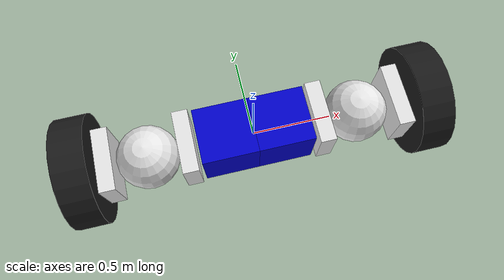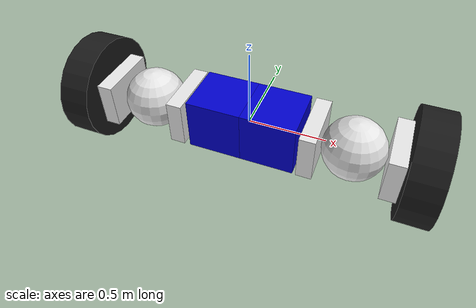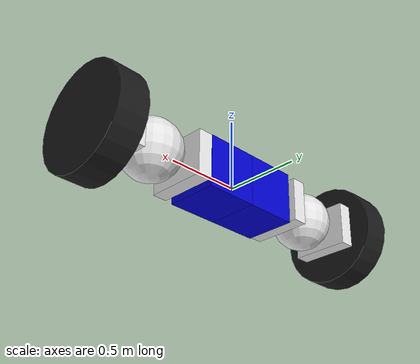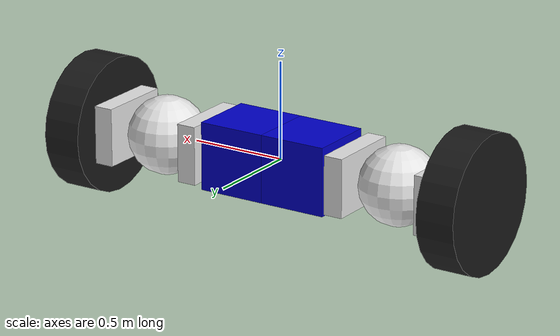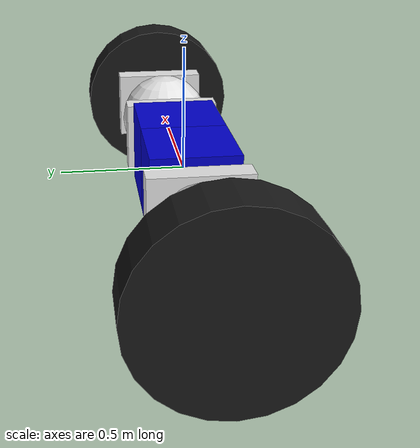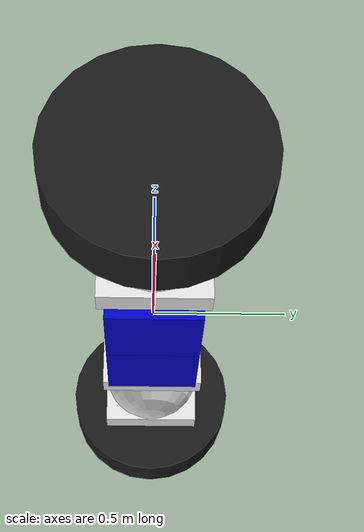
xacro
<?xml version="1.0"?>
<robot name="mrs" xmlns:xacro="http://www.ros.org/wiki/xacro">

  <!-- Constants for robot -->
  <xacro:include filename="$(find mrs_description)/urdf/common_mrs.xacro" />
  <!-- Import all Gazebo-customization elements, including Gazebo colors -->
  <xacro:include filename="$(find mrs_description)/urdf/simplified_mrs.xacro" />
  <!-- materials for visualization -->

  <xacro:macro name="initialising_frame" params="name scale prefix">
  <link name="${name}">
    <visual>
      <origin xyz="0 0 0" rpy="0 0 0"/>
      <geometry>
        <box size="0.001 0.001 0.001"/>
      </geometry>
      <material name="Red"/>
    </visual>
    <collision>
      <geometry>
        <box size="0.001 0.001 0.001"/>
      </geometry>
    </collision>
  </link>

  <joint name="${name}_joint" type="fixed">
    <origin xyz="0 0 0" rpy="0 0 0"/>
    <child link="${name}_dummy"/>
    <parent link="${name}"/>
  </joint>
  <link name="${name}_dummy"/>

  <xacro:pcm_module parent="${name}" prefix="${prefix}" instance="1" scale="${scale}" len="0.35" z="0" x="0.175" rotate="0" />
  <xacro:pcm_module parent="${name}" prefix="${prefix}" instance="2" scale="${scale}" len="0.35" z="0" x="-0.175" rotate="2"/>

  <xacro:joint_module_3DOF parent="${prefix}_pcm_link_1" prefix="1" instance="1" scale="${scale}" rotate="0"/>
  <xacro:joint_module_3DOF parent="${prefix}_pcm_link_2" prefix="2" instance="1" scale="${scale}" rotate="0"/>
  <xacro:sm_wheel parent="1_jm_link_2" prefix="${prefix}" instance="1" dia="${JMwidth+0.3}" length="0.2" rotate="1" x="1" y="0"/>
  <xacro:sm_wheel parent="2_jm_link_2" prefix="${prefix}" instance="2" dia="${JMwidth+0.3}" length="0.2" rotate="1" x="1" y="0"/>

  <xacro:diff_drive ljoint="2_jm_joint_2" rjoint="1_jm_joint_2" parent="${name}_dummy"  />

  </xacro:macro>

<!-- For 2 JM 2 PC 2 WM mobile robot -->

  <xacro:initialising_frame name="base_footprint" scale="1" prefix="mrs"/>

  <gazebo>

    <plugin name="gazebo_ros_control" filename="libgazebo_ros_control.so">
      <robotNamespace>/mrs</robotNamespace>
    </plugin>

  </gazebo>

</robot>

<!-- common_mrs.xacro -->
<robot name="mrs" xmlns:xacro="http://www.ros.org/wiki/xacro">

	<!-- Auxiliar Values -->
	<property name="pi" value="3.1415926535897931" />
	<property name="max_effort" value="20" />
	<property name="max_velocity" value="10" />

	<!-- Links Mass -->
	<property name="j1_mass" value="0.137" />
	<property name="j2_mass" value="0.01" />
	<property name="j3_mass" value="0.027" />
	<property name="w1_mass" value="0.089" />
	<property name="pc_mass" value="0.249" />

	<!-- Links COG -->
	<property name="j1_cog" value="-0.024 -0.021 0" />
	<property name="j2_cog" value="1.068e-4 0 4.22e-4" />
	<property name="j3_cog" value="-5.121e-4 0.014 -0.012" />
	<property name="w1_cog" value="-0.003 0 0" />
	<property name="pc_cog" value="-0.034 0 0" />

	<!-- Links Inertia -->
	<macro name="j1_inertia">
		<inertia ixx="1.043e-4" ixy="4.237e-5" ixz="8.843e-7"
		iyy="1.259e-5" iyz="-2.329e-8" izz="1.759e-4" />
	</macro>
	<macro name="j2_inertia">
		<inertia 	ixx="1.34e-6" 	ixy="2.119e-11"		ixz="7.365e-11"
							iyy="1.326e-6"	iyz="2.329e-12"
							izz="2.006e-6" />
	</macro>
	<macro name="j3_inertia">
		<inertia 	ixx="9.335e-6" ixy="1.198e-8" ixz="5.264e-9"
							iyy="5.505e-6" iyz="-2.699e-6"
							izz="6.39e-6" />
	</macro>
	<macro name="pc_inertia">
		<inertia 	ixx="4.35e-4" ixy="-5.575e-21" ixz="4.256e-21"
							iyy="4.82e-4" iyz="3.176e-21"
							izz="1.809e-4" />
	</macro>
	<macro name="w1_inertia">
		<inertia 	ixx="1.036e-4" ixy="0" ixz="0"
							iyy="5.359e-5" iyz="0"
							izz="5.359e-5" />
	</macro>
		<!-- Links orientation and origin -->
	<macro name="j1_ori">
      <origin xyz="0 0 0" rpy="${-pi/2} 0 0"/>
	</macro>
	<macro name="j2_ori">
		<origin xyz="0.044 0 0" rpy="0 0 0" />
	</macro>
	<macro name="j3_ori">
      <origin xyz="-0.5 0 0" rpy="0 0 ${-pi/2} "/>
	</macro>
	<macro name="pc_ori">
      <origin xyz="0.5 0 0" rpy="0 0 0"/>
	</macro>
	<macro name="w1_ori">
      <origin xyz="0 0 0" rpy="0 0 0 "/>
	</macro>

	<!-- MESH FILES -->
	<property name="j1_mesh" value="package://mrs_description/meshes/J1.dae" />
		<!--property name="j1_mesh" value="package://mrs_description/meshes/BASE.dae" /-->
	<property name="j2_mesh" value="package://mrs_description/meshes/J2.dae" />
	<property name="j3_mesh" value="package://mrs_description/meshes/J3.dae" />
	<property name="pc_mesh" value="package://mrs_description/meshes/Pc.dae" />
	<property name="w1_mesh" value="package://mrs_description/meshes/WR1.dae" />

	<!-- Link's Macro -->
	<macro name="create_link" params="name color mesh mass cog *inertia instance prefix">
		<link name="${instance}_${prefix}_${name}">
			<visual>
				<!--xacro:insert_block name="ori" /-->
				<geometry>
					<mesh filename="${mesh}" />
				</geometry>
				<material name="${color}" />
			</visual>
			<collision>
				<!--xacro:insert_block name="ori" /-->
				<geometry>
					<mesh filename="${mesh}" />
				</geometry>
			</collision>
			<inertial>
				<origin xyz="${cog}" rpy="0 0 0" />
				<mass value="${mass}" />
				<xacro:insert_block name="inertia" />
			</inertial>
		</link>
	</macro>

	<macro name="create_link_no_collision" params="name color mesh mass cog *inertia instance prefix">
		<link name="${instance}_${prefix}_${name}">
			<visual>
				<!--xacro:insert_block name="ori" /-->
				<geometry>
					<mesh filename="${mesh}" />
				</geometry>
				<material name="${color}" />
			</visual>
			<inertial>
				<origin xyz="${cog}" rpy="0 0 0" />
				<mass value="${mass}" />
				<xacro:insert_block name="inertia" />
			</inertial>
		</link>
	</macro>
	<!-- Transmission's Macro -->
	<macro name="simple_transmission" params="joint">
		<transmission name="${joint}tran">
			<type>transmission_interface/SimpleTransmission</type>
			<joint name="${joint}" />
			<actuator name="${joint}_motor">
				<hardwareInterface>EffortJointInterface</hardwareInterface>
				<mechanicalReduction>1</mechanicalReduction>
			</actuator>
		</transmission>
	</macro>

	<!-- Joints Dynamics -->
	<property name="j1_damping" value="0" />
	<property name="j2_damping" value="0" />
	<property name="j3_damping" value="0" />
	<property name="w1_damping" value="0" />

</robot>

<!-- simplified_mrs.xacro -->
<robot name="mrs" xmlns:xacro="http://www.ros.org/wiki/xacro">

  <!-- Import Rviz colors -->
  <xacro:include filename="$(find mrs_description)/urdf/materials.urdf.xacro" />

  <xacro:property name="JMlen" value=".1" />
  <xacro:property name="JMwidth" value=".4" />
  <xacro:property name="JMheight" value=".3" />

  <xacro:macro name="joint_module_diff_drive" params="parent prefix instance scale rotate">

<!-- Mobile robot using 1 JM - joint 2 should be made fixed -->
    <xacro:jm_sphere_link parent="${parent}" prefix="${prefix}" instance="0" scale="${scale}" type="fixed"/>
    <xacro:jm_rec_link parent="${prefix}_jm_link2_0" prefix="${prefix}" instance="1" scale="${scale}" rotate="0" reflect="-1" translateX="0" translateY="0"/>
    <xacro:jm_rec_link parent="${prefix}_jm_link2_0" prefix="${prefix}" instance="2" scale="${scale}" rotate="0" reflect="1" translateX="0" translateY="0"/>

    <xacro:simple_transmission joint="${prefix}_jm_joint_1" />
    <xacro:simple_transmission joint="${prefix}_jm_joint_2" />
    <xacro:diff_drive ljoint="${prefix}_jm_joint_1" rjoint="${prefix}_jm_joint_2" parent="${parent}"  />

  </xacro:macro>

    <xacro:macro name="joint_module_3DOF_vertical" params="parent prefix instance scale rotate">
<!-- Mobile robot with 2 or More JM  -->
    <xacro:jm_rec_link parent="${parent}" prefix="${prefix}" instance="1" scale="${scale}" rotate="${rotate}" reflect="0" translateX="0" translateY="0.1"/>
    <xacro:jm_sphere_link parent="${prefix}_jm_link_${instance}" prefix="${prefix}" instance="${instance}" scale="${scale}" type="revolute"/>
    <xacro:jm_rec_link parent="${prefix}_jm_link2_${instance}" prefix="${prefix}" instance="2" scale="${scale}" rotate="0" reflect="1" translateX="0" translateY="0"/>

    <xacro:simple_transmission joint="${prefix}_jm_joint_1" />
    <xacro:simple_transmission joint="${prefix}_jm_joint_2" />
    <xacro:simple_transmission joint="${prefix}_jm_joint2_1" />
<!--
Manipulator - rotate =1
-->

  </xacro:macro>
  <xacro:macro name="joint_module_3DOF" params="parent prefix instance scale rotate">
<!-- Mobile robot with 2 or More JM  -->
    <xacro:jm_rec_link parent="${parent}" prefix="${prefix}" instance="1" scale="${scale}" rotate="${rotate}" reflect="1" translateX="0" translateY="0"/>
    <xacro:jm_sphere_link parent="${prefix}_jm_link_${instance}" prefix="${prefix}" instance="${instance}" scale="${scale}" type="revolute"/>
    <xacro:jm_rec_link parent="${prefix}_jm_link2_${instance}" prefix="${prefix}" instance="2" scale="${scale}" rotate="0" reflect="1" translateX="0" translateY="0"/>

    <xacro:simple_transmission joint="${prefix}_jm_joint_1" />
    <xacro:simple_transmission joint="${prefix}_jm_joint_2" />
    <xacro:simple_transmission joint="${prefix}_jm_joint2_1" />
<!--
Manipulator - rotate =1
-->

  </xacro:macro>

  <xacro:macro name="jm_rec_link" params="parent prefix instance scale rotate reflect translateX translateY">
    <link name="${prefix}_jm_link_${instance}">
      <visual>
        <geometry>
          <box size="${JMlen*scale} ${JMwidth*scale} ${JMheight*scale}" />
        </geometry>
        <material name="Grey2">
        </material>
      </visual>
      <collision>
        <geometry>
          <box size="${JMlen*scale} ${JMwidth*scale} ${JMheight*scale}" />
        </geometry>
      </collision>
      <xacro:default_inertial mass="1" I_tensor="1"/>
    </link>
    <joint name="${prefix}_jm_joint_${instance}" type="continuous">
      <parent link="${parent}" />
      <child link="${prefix}_jm_link_${instance}" />
      <axis xyz="1 0 0"/>
      <origin xyz="${(reflect)*(JMlen+JMwidth)/2} ${translateX} ${translateY}" rpy="0 ${-rotate*pi/2} 0" />
    </joint>
      <xacro:gazebo_visual link="${prefix}_jm_link_${instance}" visual="Grey" />
  </xacro:macro>

    <xacro:macro name="jm_sphere_link" params="parent prefix instance scale type">
      <link name="${prefix}_jm_link2_${instance}">
        <visual>
          <geometry>
            <sphere radius="${JMwidth/2*scale}"/>
          </geometry>
          <material name="Grey2">
          </material>
        </visual>
        <collision>
          <geometry>
            <sphere radius="${JMwidth/2*scale}"/>
          </geometry>
        </collision>
        <xacro:default_inertial mass="1" I_tensor="1"/>
      </link>
      <joint name="${prefix}_jm_joint2_${instance}" type="${type}">
        <parent link="${parent}" />
        <child link="${prefix}_jm_link2_${instance}" />
        <origin xyz="${instance*(JMlen+JMwidth)/2} 0 0" rpy="0 0 0" />
        <axis xyz="0 0 1"/>
        <limit effort="100" velocity="100" lower="${-pi/2}"
        upper="${pi/2}" />
      </joint>
      <xacro:gazebo_visual link="${prefix}_jm_link2_${instance}" visual="Grey" />
    </xacro:macro>

    <xacro:macro name="diff_drive" params="ljoint rjoint parent">
      <!-- CONTROLLERS -->
      <gazebo>
        <plugin name="differential_drive_controller" filename="libgazebo_ros_diff_drive.so">
          <alwaysOn>true</alwaysOn>
          <updateRate></updateRate>
          <leftJoint>${ljoint}</leftJoint>
          <rightJoint>${rjoint}</rightJoint>
          <wheelSeparation>0.6</wheelSeparation>
          <wheelDiameter>0.6</wheelDiameter>
          <torque>20</torque>
          <commandTopic>mrs/cmd_vel</commandTopic>
          <odometryTopic>odom</odometryTopic>
          <odometryFrame>odom</odometryFrame>
          <robotBaseFrame>${parent}</robotBaseFrame>
        </plugin>
    </gazebo>

    </xacro:macro>

    <xacro:macro name="pcm_module" params="parent prefix instance scale len z x rotate">
      <link name="${prefix}_pcm_link_${instance}">
        <visual>
          <geometry>
            <box size="${len*scale} ${len*scale} ${len*scale}" />
          </geometry>
          <material name="Blue">
          </material>
        </visual>
        <collision>
          <geometry>
            <box size="${len*scale} ${len*scale} ${len*scale}" />
          </geometry>
        </collision>
        <xacro:default_inertial mass="0.01" I_tensor="1"/>
      </link>
      <joint name="${prefix}_pcm_joint_${instance}" type="fixed">
        <parent link="${parent}" />
        <child link="${prefix}_pcm_link_${instance}" />
        <origin xyz="${x} 0 ${z}" rpy="0 ${-rotate*pi/2} 0" />
      </joint>
      <xacro:gazebo_visual link="${prefix}_pcm_link_${instance}" visual="Blue" />
    </xacro:macro>

  <xacro:macro name="cuboid_inertial" params="mass len height width">
    <inertia ixx="${mass*(len*len+height*height)/12}" ixy="0" ixz="0" iyy="${mass*(width*width+len*len)/12}" iyz="0" izz="${(mass*(width*width+height*height)/12}"/>
  </xacro:macro>

  <xacro:macro name="cylinder_inertial" params="mass len radius">
    <inertia ixx="${mass*(len*len+3*radius*radius)/12}" ixy="0" ixz="0" iyy="${mass*(len*len+3*radius*radius)/12}" iyz="0" izz="${(mass*(radius*radius)/2}"/>
  </xacro:macro>

  <xacro:macro name="default_inertial" params="mass I_tensor">
<!--
      Inertia of solid cuboid - m*l*2/6
      Inertia of solid sphere - m*r*r*2/5
-->
    <inertial>
      <mass value="${mass}"/>
      <inertia ixx="${I_tensor}" ixy="0.0" ixz="0.0" iyy="${I_tensor}" iyz="0.0" izz="${I_tensor}"/>
    </inertial>
  </xacro:macro>

  <xacro:macro name="sm_wheel" params="parent prefix instance dia length rotate x y">
    <link name="${prefix}_sm_wheel_link_${instance}">
      <visual>
        <geometry>
          <cylinder radius="${dia/2}" length="${length}" />
        </geometry>
          <material name="Black">
        </material>
      </visual>
      <collision>
        <geometry>
          <cylinder radius="${dia/2}" length="${length}" />
        </geometry>
      </collision>
      <xacro:default_inertial mass="1" I_tensor="1"/>
    </link>

    <joint name="${prefix}_sm_wheel_joint_${instance}" type="fixed">
      <parent link="${parent}" />
      <child link="${prefix}_sm_wheel_link_${instance}" />
      <origin xyz="${x*((JMlen+length)/2)} ${y} 0" rpy=" 0 ${rotate*pi/2} 0" />
    </joint>

    <xacro:gazebo_visual link="${prefix}_sm_wheel_link_${instance}" visual="White" />
  </xacro:macro>

  <xacro:macro name="gazebo_visual" params="link visual">
    <gazebo reference = "${link}">
      <material>Gazebo/${visual}</material>
      <selfCollide>false</selfCollide>
    </gazebo>
  </xacro:macro>

    <!-- Transmission's Macro -->
  <macro name="simple_transmission" params="joint">
    <transmission name="${joint}tran">
      <type>transmission_interface/SimpleTransmission</type>
      <joint name="${joint}" />
      <actuator name="${joint}_motor">
        <hardwareInterface>EffortJointInterface</hardwareInterface>
        <mechanicalReduction>1</mechanicalReduction>
      </actuator>
    </transmission>
  </macro>
</robot>

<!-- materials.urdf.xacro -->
<robot>

  <material name="Blue">
    <color rgba="0.0 0.0 0.8 1.0"/>
  </material>

  <material name="Grey">
    <color rgba="0.7 0.7 0.7 1.0"/>
  </material>

  <material name="Grey2">
    <color rgba="0.9 0.9 0.9 1.0"/>
  </material>

  <material name="Red">
    <color rgba="0.8 0.0 0.0 1.0"/>
  </material>

  <material name="White">
    <color rgba="1.0 1.0 1.0 1.0"/>
  </material>

  <material name="Black">
    <color rgba="0.1 0.1 0.1 1.0"/>
  </material>

  <material name="LightGrey">
    <color rgba="0.6 0.6 0.6 1.0"/>
  </material>

    <material name="Orange">
    <color rgba="1.0 0.4 0.0 1.0"/>
  </material>

  <material name="DarkGrey">
    <color rgba="0.3 0.3 0.3 1.0"/>
  </material>

  <material name="Green">
    <color rgba="0.0 1.0 0.0 1.0"/>
  </material>

  <material name="Caster">
    <texture filename="package://pr2_description/materials/textures/pr2_caster_texture.png" />
  </material>

  <material name="Wheel_l">
    <texture filename="package://pr2_description/materials/textures/pr2_wheel_left.png" />
  </material>

  <material name="Wheel_r">
    <texture filename="package://pr2_description/materials/textures/pr2_wheel_right.png" />
  </material>

  <material name="RollLinks">
    <texture filename="package://pr2_description/materials/textures/pr2_wheel_left.png" />
  </material>

</robot>
